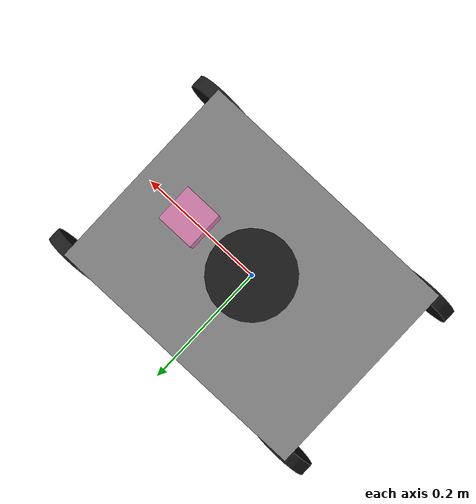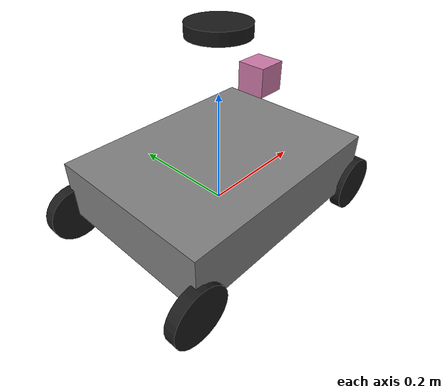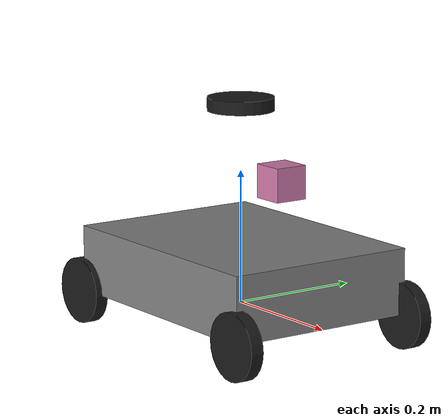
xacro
<?xml version="1.0"?>
<robot xmlns:xacro="http://ros.org/wiki/xacro" name="four_wheel_bot">

  <!-- Properties -->
  <xacro:property name="wheel_radius" value="0.05"/>
  <xacro:property name="wheel_width" value="0.02"/>
  <xacro:property name="base_length" value="0.4"/>
  <xacro:property name="base_width" value="0.3"/>
  <xacro:property name="base_height" value="0.1"/>
  <xacro:property name="lidar_height" value="0.2"/>
  <xacro:property name="mass" value="1.0"/>

  <!-- Base Link -->
  <link name="base_link">
    <visual>
      <geometry>
        <box size="${base_length} ${base_width} ${base_height}"/>
      </geometry>
      <origin xyz="0 0 ${base_height/2}" rpy="0 0 0"/>
      <material name="Grey">
        <color rgba="0.5 0.5 0.5 1.0"/>
      </material>
    </visual>
    <collision>
      <geometry>
        <box size="${base_length} ${base_width} ${base_height}"/>
      </geometry>
      <origin xyz="0 0 ${base_height/2}" rpy="0 0 0"/>
    </collision>
    <inertial>
      <mass value="${mass}"/>
      <inertia ixx="0.01" ixy="0.0" ixz="0.0"
               iyy="0.01" iyz="0.0"
               izz="0.01"/>
    </inertial>
  </link>

  <!-- Wheel Macro -->
  <xacro:macro name="wheel" params="name x y">
    <link name="${name}">
      <visual>
        <geometry>
          <cylinder radius="${wheel_radius}" length="${wheel_width}"/>
        </geometry>
        <origin xyz="0 0 0" rpy="1.5708 0 0"/>
        <material name="Black">
          <color rgba="0.1 0.1 0.1 1.0"/>
        </material>
      </visual>
      <collision>
        <geometry>
          <cylinder radius="${wheel_radius}" length="${wheel_width}"/>
        </geometry>
        <origin xyz="0 0 0" rpy="1.5708 0 0"/>
      </collision>
      <inertial>
        <mass value="0.1"/>
        <inertia ixx="0.01" iyy="0.01" izz="0.01"
                 ixy="0.0" ixz="0.0" iyz="0.0"/>
      </inertial>
    </link>

    <joint name="${name}_joint" type="continuous">
      <parent link="base_link"/>
      <child link="${name}"/>
      <origin xyz="${x} ${y} 0" rpy="0 0 0"/>
      <axis xyz="0 1 0"/>
    </joint>
  </xacro:macro>

  <!-- Four Wheels -->
  <xacro:wheel name="front_left_wheel"  x="${base_length/2}" y=" ${base_width/2}"/>
  <xacro:wheel name="front_right_wheel" x="${base_length/2}" y="-${base_width/2}"/>
  <xacro:wheel name="rear_left_wheel"   x="-${base_length/2}" y=" ${base_width/2}"/>
  <xacro:wheel name="rear_right_wheel"  x="-${base_length/2}" y="-${base_width/2}"/>

  <!-- LIDAR Link -->
  <link name="lidar">
    <visual>
      <origin xyz="0 0 ${base_height}" rpy="0 0 0"/>
      <geometry><cylinder radius="0.05" length="0.02"/></geometry>
      <material name="Black">
        <color rgba="0.1 0.1 0.1 1.0"/>
      </material>
    </visual>
    <inertial>
      <mass value="0.1"/>
      <inertia ixx="0.0001" ixy="0.0" ixz="0.0"
               iyy="0.0001" iyz="0.0"
               izz="0.0001"/>
    </inertial>
  </link>

  <joint name="joint_lidar" type="fixed">
    <parent link="base_link"/>
    <child link="lidar"/>
    <origin xyz="0 0 ${lidar_height}" rpy="0 0 0"/>
  </joint>

  <!-- Gazebo LIDAR Plugin -->
  <gazebo reference="lidar">
    <sensor type="ray" name="lidar_sensor">
      <pose>0 0 0 0 0 0</pose>
      <visualize>true</visualize>
      <update_rate>20</update_rate>
      <ray>
        <scan>
          <horizontal>
            <samples>360</samples>
            <resolution>1</resolution>
            <min_angle>-1.57</min_angle>
            <max_angle>1.57</max_angle>
          </horizontal>
        </scan>
        <range>
          <min>0.12</min>
          <max>3.5</max>
          <resolution>0.01</resolution>
        </range>
        <noise>
          <type>gaussian</type>
          <mean>0.0</mean>
          <stddev>0.01</stddev>
        </noise>
      </ray>
      <plugin name="gazebo_ros_laser" filename="libgazebo_ros_ray_sensor.so">
        <ros>
          <remapping>~/out:=scan</remapping>
        </ros>
        <output_type>sensor_msgs/LaserScan</output_type>
        <frame_name>lidar</frame_name>
      </plugin>
    </sensor>
  </gazebo>

  <!-- Diff Drive Plugin -->
  <gazebo>
    <plugin name="diff_drive" filename="libgazebo_ros_diff_drive.so">
      <ros>
        <remapping>cmd_vel:=/cmd_vel</remapping>
        <remapping>odom:=/odom</remapping>
      </ros>
      <left_joint>front_left_wheel_joint</left_joint>
      <right_joint>front_right_wheel_joint</right_joint>
      <wheel_separation>${base_width}</wheel_separation>
      <wheel_radius>${wheel_radius}</wheel_radius>
      <publish_odom>true</publish_odom>
      <publish_tf>true</publish_tf>
    </plugin>
  </gazebo>
  <link name="camera_link">
  <visual>
    <geometry>
      <box size="0.05 0.05 0.05"/>
    </geometry>
  </visual>
</link>

<joint name="camera_joint" type="fixed">
  <parent link="base_link"/>
  <child link="camera_link"/>
  <origin xyz="0.1 0 0.2" rpy="0 0 0"/>
</joint>

<gazebo reference="camera_link">
  <sensor type="camera" name="camera">
    <pose>0 0 0 0 0 0</pose>
    <update_rate>30.0</update_rate>
    <camera>
      <horizontal_fov>1.3962634</horizontal_fov>
      <image>
        <width>640</width>
        <height>480</height>
        <format>R8G8B8</format>
      </image>
      <clip>
        <near>0.1</near>
        <far>100</far>
      </clip>
    </camera>
    <plugin name="camera_controller" filename="libgazebo_ros_camera.so">
      <camera_name>bot_camera</camera_name>
      <image_topic_name>image_raw</image_topic_name>
      <camera_info_topic_name>camera_info</camera_info_topic_name>
      <frame_name>camera_link</frame_name>
    </plugin>
  </sensor>
</gazebo>

</robot>
